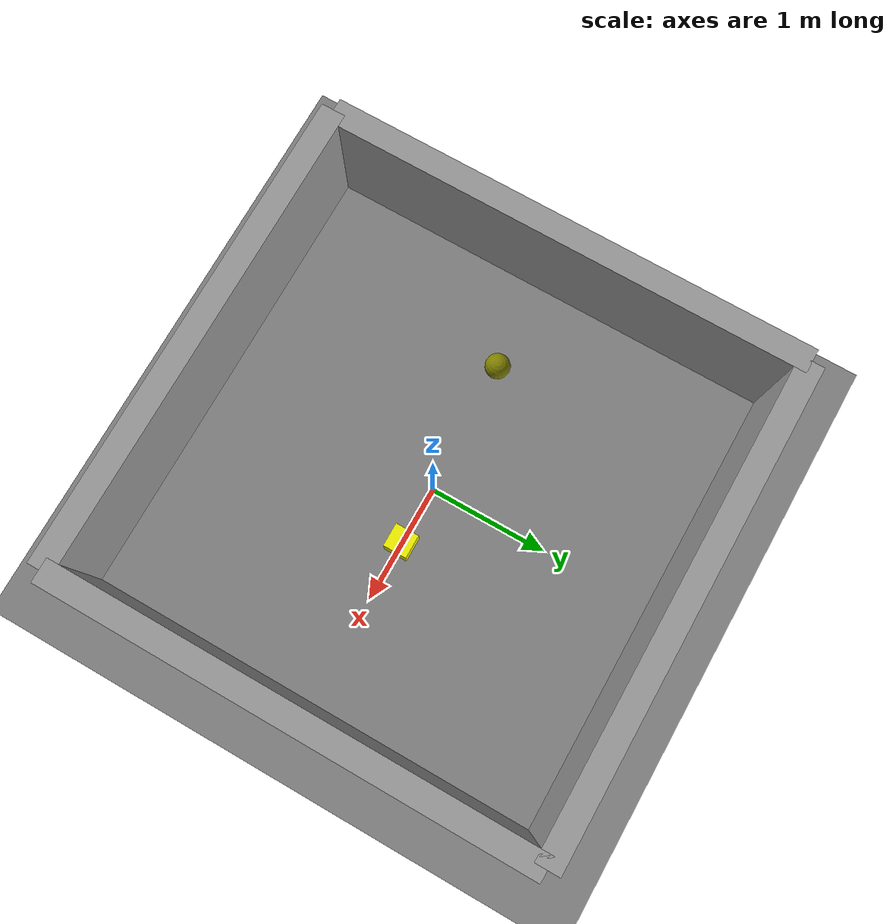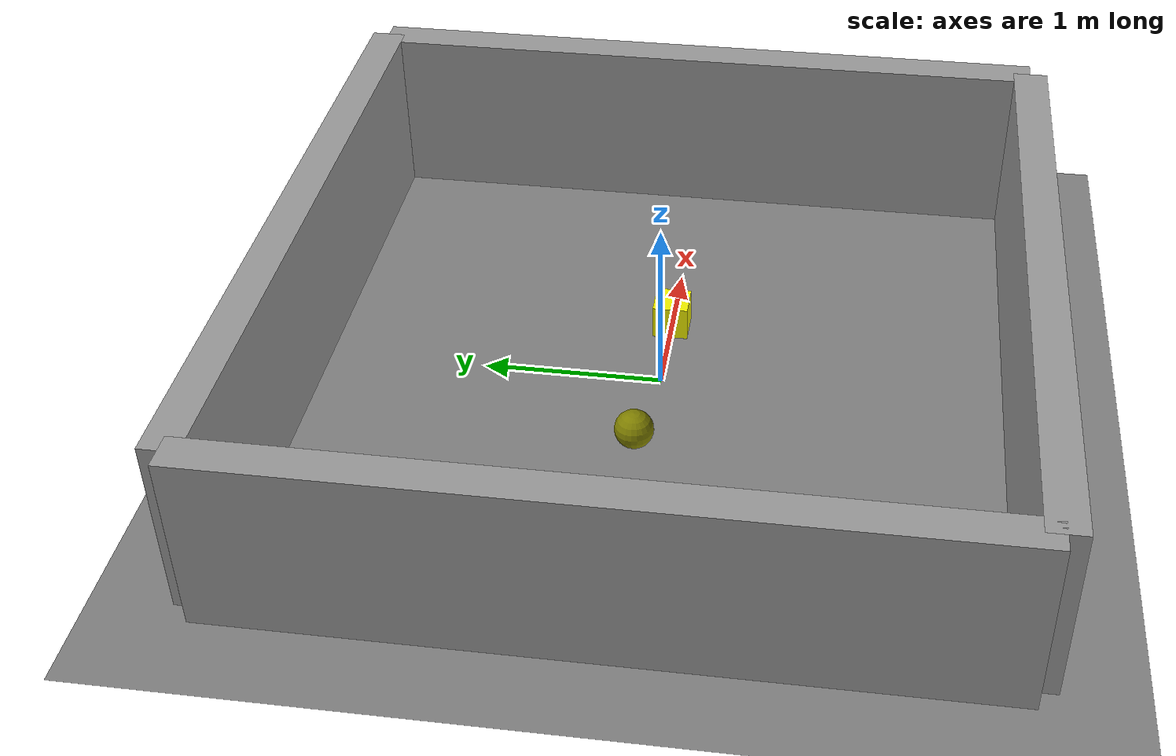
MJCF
<mujoco>
<option gravity="0 0 -9.81"/>

<asset>
<texture name="checks_floor" builtin="checker" type="2d" width="256" height="256" rgb1="1 1 1" rgb2="0 0 0"/>
<material name="floor_mat" texture="checks_floor" texrepeat="2 2" texuniform="true"/>
<texture name="checks_ball" builtin="checker" type="2d" width="256" height="256" rgb1="1 0 0" rgb2="0 1 0"/>
<material name="ball_mat" texture="checks_ball" texrepeat="2 2" texuniform="true"/>
</asset>
<worldbody>
<geom name="wall1" type="box" size="2 0.1 0.5" pos="0 -2 0.5" rgba="0.6 0.6 0.6 1"/>
<geom name="wall2" type="box" size="2 0.1 0.5" pos="0 2 0.5" rgba="0.6 0.6 0.6 1"/>
<geom name="wall3" type="box" size="0.1 2 0.5" pos="-2 0 0.5" rgba="0.6 0.6 0.6 1"/>
<geom name="wall4" type="box" size="0.1 2 0.5" pos="2 0 0.5" rgba="0.6 0.6 0.6 1"/>
<geom type="plane" size="5 5 0.1" material="floor_mat"/>
<body name="ball" pos="-1 0 0.5">
<joint name="jx" type="slide" axis="1 0 0"/>
<joint name="jz" type="slide" axis="0 0 1"/>
<joint name="jy" type="slide" axis="0 1 0"/>
<geom type="sphere" size="0.1" material="ball_mat"/>
</body>

<body name="fixed_box" pos="0.5 0 0.1">
<geom type="box" size="0.1 0.1 0.1" rgba="0.95 0.95 0 1"/>
 <freejoint/>
</body>
</worldbody>

<actuator>
<motor joint="jx" gear="2"/>
<motor joint="jz" gear="2"/>
</actuator>

</mujoco>
